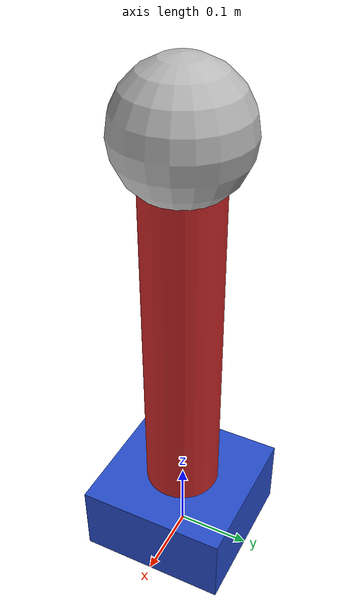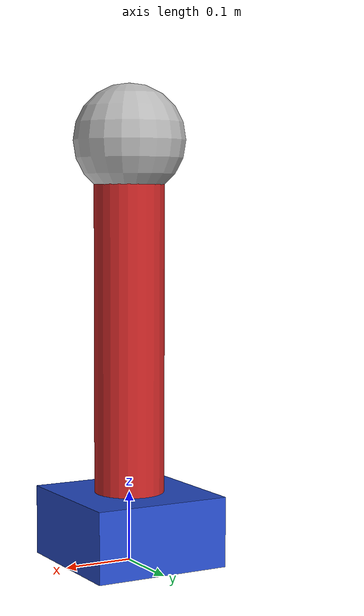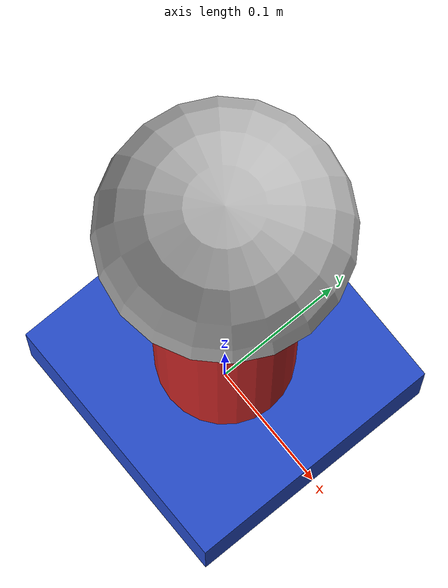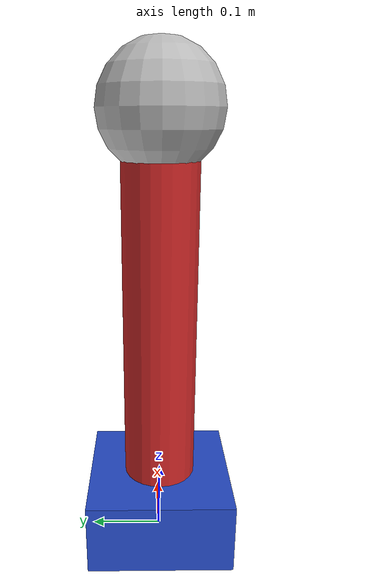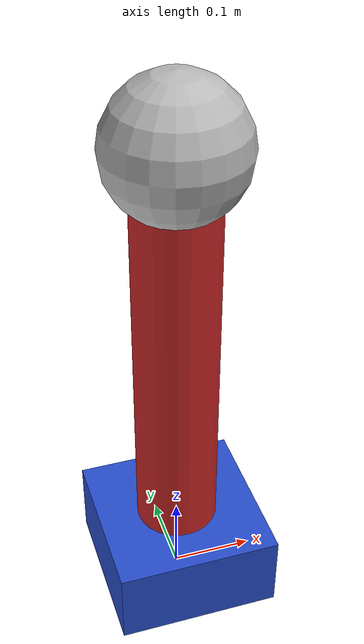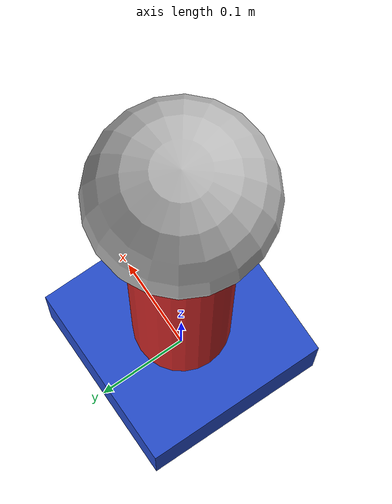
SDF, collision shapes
<?xml version="1.0"?>
<sdf version="1.12">
  <model name="robot">
    <link name="base_link">
      <inertial>
        <pose>0.0 0.0 0.05 0.0 0.0 0.0</pose>
        <mass>1.0</mass>
        <inertia>
          <ixx>0.01</ixx>
          <ixy>0.0</ixy>
          <ixz>0.0</ixz>
          <iyy>0.01</iyy>
          <iyz>0.0</iyz>
          <izz>0.01</izz>
        </inertia>
      </inertial>
      <collision name="base_collision">
        <pose>0.0 0.0 0.05 0.0 0.0 0.0</pose>
        <geometry>
          <box>
            <size>0.2 0.2 0.1</size>
          </box>
        </geometry>
      </collision>
      <visual name="base_visual">
        <pose>0.0 0.0 0.05 0.0 0.0 0.0</pose>
        <geometry>
          <box>
            <size>0.2 0.2 0.1</size>
          </box>
        </geometry>
        <material>
          <script>
            <name>blue</name>
          </script>
          <diffuse>0.0 0.0 1.0 1.0</diffuse>
        </material>
      </visual>
    </link>

    <!-- robot-diff convention: link pose must be identity relative to parent joint -->
    <link name="link1">
      <pose relative_to="joint1"/>
      <inertial>
        <pose>0.0 0.0 0.25 0.0 0.0 0.0</pose>
        <mass>0.5</mass>
        <inertia>
          <ixx>0.005</ixx>
          <ixy>0.0</ixy>
          <ixz>0.0</ixz>
          <iyy>0.005</iyy>
          <iyz>0.0</iyz>
          <izz>0.001</izz>
        </inertia>
      </inertial>
      <collision name="link1_collision">
        <pose>0.0 0.0 0.25 0.0 0.0 0.0</pose>
        <geometry>
          <cylinder>
            <radius>0.05</radius>
            <length>0.5</length>
          </cylinder>
        </geometry>
      </collision>
      <visual name="link1_visual">
        <pose>0.0 0.0 0.25 0.0 0.0 0.0</pose>
        <geometry>
          <cylinder>
            <radius>0.05</radius>
            <length>0.5</length>
          </cylinder>
        </geometry>
        <material>
          <script>
            <name>red</name>
          </script>
          <diffuse>1.0 0.0 0.0 1.0</diffuse>
        </material>
      </visual>
    </link>

    <!-- robot-diff convention: link pose must be identity relative to parent joint -->
    <link name="link2">
      <pose relative_to="joint2"/>
      <inertial>
        <pose>0.0 0.0 0.0 0.0 0.0 0.0</pose>
        <mass>0.3</mass>
        <inertia>
          <ixx>0.001</ixx>
          <ixy>0.0</ixy>
          <ixz>0.0</ixz>
          <iyy>0.001</iyy>
          <iyz>0.0</iyz>
          <izz>0.001</izz>
        </inertia>
      </inertial>
      <collision name="link2_collision">
        <pose>0.0 0.0 0.0 0.0 0.0 0.0</pose>
        <geometry>
          <sphere>
            <radius>0.08</radius>
          </sphere>
        </geometry>
      </collision>
      <visual name="link2_visual">
        <pose>0.0 0.0 0.0 0.0 0.0 0.0</pose>
        <geometry>
          <mesh>
            <uri>meshes/link2.dae</uri>
            <scale>1.0 1.0 1.0</scale>
          </mesh>
        </geometry>
        <material>
          <script>
            <name>metal</name>
            <uri>textures/metal.png</uri>
          </script>
        </material>
      </visual>
    </link>

    <!-- robot-diff convention: joint pose must be relative to parent link -->
    <joint name="joint1" type="revolute">
      <pose relative_to="base_link">0.0 0.0 0.1 0.0 0.0 0.0</pose>
      <parent>base_link</parent>
      <child>link1</child>
      <axis>
        <xyz>0.0 0.0 1.0</xyz>
        <limit>
          <lower>-1.57</lower>
          <upper>1.57</upper>
          <effort>10.0</effort>
          <velocity>1.0</velocity>
        </limit>
      </axis>
    </joint>

    <!-- robot-diff convention: joint pose must be relative to parent link -->
    <joint name="joint2" type="prismatic">
      <pose relative_to="link1">0.0 0.0 0.5 0.0 0.0 0.0</pose>
      <parent>link1</parent>
      <child>link2</child>
      <axis>
        <xyz>0.0 0.0 1.0</xyz>
        <limit>
          <lower>0.0</lower>
          <upper>0.3</upper>
          <effort>5.0</effort>
          <velocity>0.5</velocity>
        </limit>
      </axis>
    </joint>
  </model>
</sdf>
